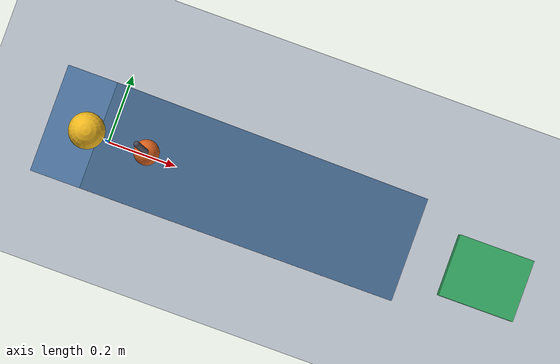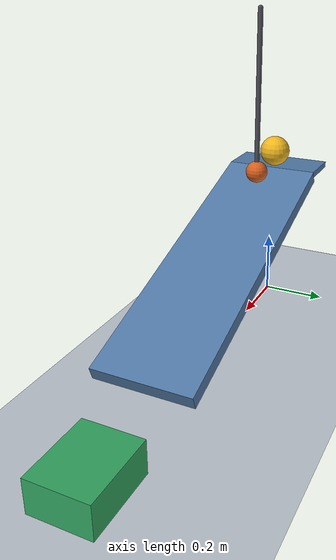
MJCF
<mujoco model="pendulum_ball_ramp_cart">
  <compiler angle="degree" inertiafromgeom="true"/>
  <option timestep="0.002" gravity="0 0 -9.81" integrator="implicitfast" solver="Newton" iterations="100" cone="elliptic"/>

  <visual>
    <headlight ambient="0.4 0.4 0.4" diffuse="0.7 0.7 0.7" specular="0.2 0.2 0.2"/>
  </visual>

  <!-- Sliding friction is 0.68. Additional friction components are torsional and rolling. -->
  <!-- A linear-contact damping ratio of 0.6901 corresponds approximately to restitution 0.05. -->

  <worldbody>
    <light name="scene_light" pos="0.4 -1.5 3" dir="0 0 -1"/>
    <camera name="overview" pos="2.1 -3.5 1.8" xyaxes="0.91 0.41 0 -0.15 0.33 0.93"/>

    <geom name="floor" type="plane" pos="0 0 0" size="4 3 0.1" condim="6" friction="0.68 0.005 0.005" solref="0.006 0.6901" solimp="0.95 0.95 0.001" rgba="0.75 0.78 0.82 1"/>

    <!-- Main ramp: 0.95 m long, 0.30 m wide, 19 degrees downhill toward +x. -->
    <!-- Its upper surface ends at x=0.898242648, z=0.15. -->
    <!-- The short level launch ledge holds the initially stationary ball at the high end. -->
    <body name="ramp1" pos="0 0 0">
      <geom name="ramp1_surface" type="box" pos="0.442609960 0 0.285734502" euler="0 19 0" size="0.475 0.15 0.02" condim="6" friction="0.68 0.005 0.005" solref="0.006 0.6901" solimp="0.95 0.95 0.001" rgba="0.32 0.48 0.66 1"/>
      <geom name="ramp1_launch_ledge" type="box" pos="-0.07 0 0.449289746" size="0.07 0.15 0.01" condim="6" friction="0.68 0.005 0.005" solref="0.006 0.6901" solimp="0.95 0.95 0.001" rgba="0.32 0.48 0.66 1"/>
    </body>

    <!-- Rigid pendulum: pivot-to-lowest-point length 0.55 m; total mass 0.40 kg. -->
    <!-- Positive hinge angle places it left of vertical; gravity swings it toward +x. -->
    <body name="pendulum1" pos="0.137667599 0 0.996231813">
      <joint name="pendulum1_hinge" type="hinge" pos="0 0 0" axis="0 1 0" damping="0.04"/>
      <geom name="pendulum1_rod" type="capsule" fromto="0 0 -0.008 0 0 -0.515" size="0.008" mass="0.08" condim="6" friction="0.68 0.005 0.005" solref="0.006 0.6901" solimp="0.95 0.95 0.001" rgba="0.3 0.3 0.34 1"/>
      <geom name="pendulum1_bob" type="sphere" pos="0 0 -0.515" size="0.035" mass="0.32" condim="6" friction="0.68 0.005 0.005" solref="0.006 0.6901" solimp="0.95 0.95 0.001" rgba="0.85 0.38 0.12 1"/>
    </body>

    <body name="ball1" pos="-0.03 0 0.509289746">
      <freejoint name="ball1_free"/>
      <geom name="ball1_sphere" type="sphere" size="0.05" mass="0.20" condim="6" friction="0.68 0.005 0.005" solref="0.006 0.6901" solimp="0.95 0.95 0.001" rgba="0.94 0.72 0.12 1"/>
    </body>

    <!-- Cart front face is 0.12 m beyond the ramp's low-end upper edge. -->
    <!-- Slide frictionloss represents mu*m*g, since the slide joint supports the cart vertically. -->
    <body name="cart1" pos="1.128242648 0 0.05">
      <joint name="cart1_slide" type="slide" axis="1 0 0" damping="0.20" frictionloss="3.3354"/>
      <geom name="cart1_box" type="box" size="0.11 0.09 0.05" mass="0.50" condim="6" friction="0.68 0.005 0.005" solref="0.006 0.6901" solimp="0.95 0.95 0.001" rgba="0.2 0.65 0.38 1"/>
    </body>
  </worldbody>

  <!-- Keyframe joint angles are radians. Every generalized velocity starts at zero. -->
  <keyframe>
    <key name="start" time="0" qpos="0.9599310886 -0.03 0 0.509289746 1 0 0 0 0" qvel="0 0 0 0 0 0 0 0"/>
  </keyframe>
</mujoco>
